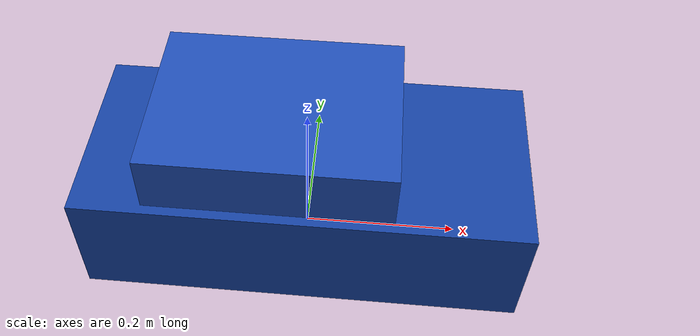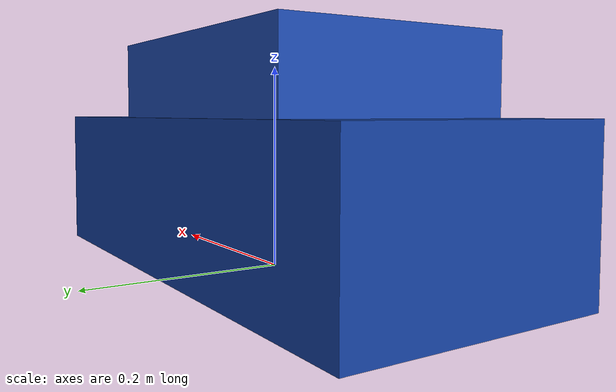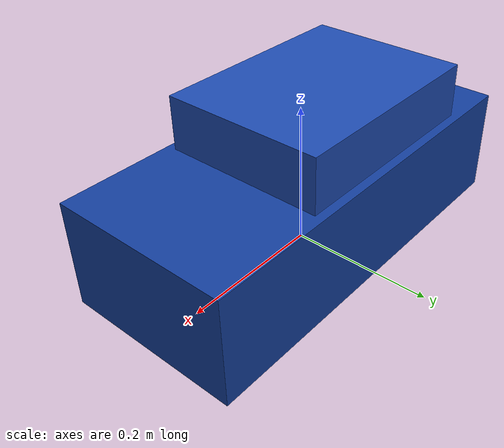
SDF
<sdf version="1.9">
  <model name="lite_base_car">
    <static>true</static>
    <link name="car_link">
      <collision name="body_collision">
        <pose>0 0 0.075 0 0 0</pose>
        <geometry>
          <box><size>0.55 0.25 0.15</size></box>
        </geometry>
      </collision>
      <visual name="body_visual">
        <pose>0 0 0.075 0 0 0</pose>
        <geometry>
          <box><size>0.55 0.25 0.15</size></box>
        </geometry>
        <material>
          <ambient>0.08 0.25 0.62 1</ambient>
          <diffuse>0.08 0.25 0.62 1</diffuse>
          <specular>0.06 0.06 0.06 1</specular>
        </material>
      </visual>
      <visual name="top_visual">
        <pose>-0.0375 0 0.175 0 0 0</pose>
        <geometry>
          <box><size>0.3 0.225 0.1</size></box>
        </geometry>
        <material>
          <ambient>0.12 0.30 0.70 1</ambient>
          <diffuse>0.12 0.30 0.70 1</diffuse>
          <specular>0.06 0.06 0.06 1</specular>
        </material>
      </visual>
    </link>
  </model>
</sdf>
